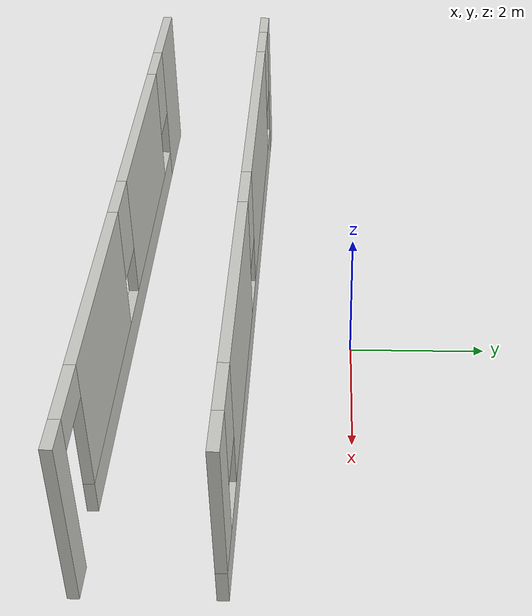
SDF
<?xml version='1.0'?>
<sdf version='1.5'>
  <model name='corridor1'>
    <pose frame=''>-0.895 -2.455 0 0 -0 0</pose>
    <link name='Wall_10'>
      <pose frame=''>0 -0.895 0 0 -0 0</pose>
      <visual name='Wall_10_Visual_0'>
        <pose frame=''>-4.76602 0 1.25 0 -0 0</pose>
        <geometry>
          <box>
            <size>1.46795 0.15 2.5</size>
          </box>
        </geometry>
        <material>
          <script>
            <uri>file://media/materials/scripts/gazebo.material</uri>
            <name>Gazebo/CeilingTiled</name>
          </script>
          <ambient>0 1 0 1</ambient>
        </material>
      </visual>
      <collision name='Wall_10_Collision_0'>
        <geometry>
          <box>
            <size>1.46795 0.15 2.5</size>
          </box>
        </geometry>
        <pose frame=''>-4.76602 0 1.25 0 -0 0</pose>
      </collision>
      <visual name='Wall_10_Visual_1'>
        <pose frame=''>5.26534 0 1.25 0 -0 0</pose>
        <geometry>
          <box>
            <size>0.469324 0.15 2.5</size>
          </box>
        </geometry>
        <material>
          <script>
            <uri>file://media/materials/scripts/gazebo.material</uri>
            <name>Gazebo/CeilingTiled</name>
          </script>
          <ambient>0 1 0 1</ambient>
        </material>
      </visual>
      <collision name='Wall_10_Collision_1'>
        <geometry>
          <box>
            <size>0.469324 0.15 2.5</size>
          </box>
        </geometry>
        <pose frame=''>5.26534 0 1.25 0 -0 0</pose>
      </collision>
      <visual name='Wall_10_Visual_2'>
        <pose frame=''>0.049313 0 0.25 0 -0 0</pose>
        <geometry>
          <box>
            <size>8.16273 0.15 0.5</size>
          </box>
        </geometry>
        <material>
          <script>
            <uri>file://media/materials/scripts/gazebo.material</uri>
            <name>Gazebo/CeilingTiled</name>
          </script>
          <ambient>0 1 0 1</ambient>
        </material>
      </visual>
      <collision name='Wall_10_Collision_2'>
        <geometry>
          <box>
            <size>8.16273 0.15 0.5</size>
          </box>
        </geometry>
        <pose frame=''>0.049313 0 0.25 0 -0 0</pose>
      </collision>
      <visual name='Wall_10_Visual_3'>
        <pose frame=''>-1.54845 0 1.5 0 -0 0</pose>
        <geometry>
          <box>
            <size>3.3672 0.15 2</size>
          </box>
        </geometry>
        <material>
          <script>
            <uri>file://media/materials/scripts/gazebo.material</uri>
            <name>Gazebo/CeilingTiled</name>
          </script>
          <ambient>0 1 0 1</ambient>
        </material>
      </visual>
      <collision name='Wall_10_Collision_3'>
        <geometry>
          <box>
            <size>3.3672 0.15 2</size>
          </box>
        </geometry>
        <pose frame=''>-1.54845 0 1.5 0 -0 0</pose>
      </collision>
      <visual name='Wall_10_Visual_4'>
        <pose frame=''>2.53291 0 1.5 0 -0 0</pose>
        <geometry>
          <box>
            <size>3.19553 0.15 2</size>
          </box>
        </geometry>
        <material>
          <script>
            <uri>file://media/materials/scripts/gazebo.material</uri>
            <name>Gazebo/CeilingTiled</name>
          </script>
          <ambient>0 1 0 1</ambient>
        </material>
      </visual>
      <collision name='Wall_10_Collision_4'>
        <geometry>
          <box>
            <size>3.19553 0.15 2</size>
          </box>
        </geometry>
        <pose frame=''>2.53291 0 1.5 0 -0 0</pose>
      </collision>
      <visual name='Wall_10_Visual_5'>
        <pose frame=''>-3.63205 0 1.9 0 -0 0</pose>
        <geometry>
          <box>
            <size>0.8 0.15 1.2</size>
          </box>
        </geometry>
        <material>
          <script>
            <uri>file://media/materials/scripts/gazebo.material</uri>
            <name>Gazebo/CeilingTiled</name>
          </script>
          <ambient>0 1 0 1</ambient>
        </material>
      </visual>
      <collision name='Wall_10_Collision_5'>
        <geometry>
          <box>
            <size>0.8 0.15 1.2</size>
          </box>
        </geometry>
        <pose frame=''>-3.63205 0 1.9 0 -0 0</pose>
      </collision>
      <visual name='Wall_10_Visual_6'>
        <pose frame=''>0.535148 0 1.9 0 -0 0</pose>
        <geometry>
          <box>
            <size>0.8 0.15 1.2</size>
          </box>
        </geometry>
        <material>
          <script>
            <uri>file://media/materials/scripts/gazebo.material</uri>
            <name>Gazebo/CeilingTiled</name>
          </script>
          <ambient>0 1 0 1</ambient>
        </material>
      </visual>
      <collision name='Wall_10_Collision_6'>
        <geometry>
          <box>
            <size>0.8 0.15 1.2</size>
          </box>
        </geometry>
        <pose frame=''>0.535148 0 1.9 0 -0 0</pose>
      </collision>
      <visual name='Wall_10_Visual_7'>
        <pose frame=''>4.58068 0 2.25 0 -0 0</pose>
        <geometry>
          <box>
            <size>0.9 0.15 0.5</size>
          </box>
        </geometry>
        <material>
          <script>
            <uri>file://media/materials/scripts/gazebo.material</uri>
            <name>Gazebo/CeilingTiled</name>
          </script>
          <ambient>0 1 0 1</ambient>
        </material>
      </visual>
      <collision name='Wall_10_Collision_7'>
        <geometry>
          <box>
            <size>0.9 0.15 0.5</size>
          </box>
        </geometry>
        <pose frame=''>4.58068 0 2.25 0 -0 0</pose>
      </collision>
    </link>
    <link name='Wall_8'>
      <pose frame=''>0 0.895 0 0 -0 0</pose>
      <visual name='Wall_8_Visual_0'>
        <pose frame=''>-5.19947 0 1.25 0 -0 0</pose>
        <geometry>
          <box>
            <size>0.601052 0.15 2.5</size>
          </box>
        </geometry>
        <material>
          <script>
            <uri>file://media/materials/scripts/gazebo.material</uri>
            <name>Gazebo/CeilingTiled</name>
          </script>
          <ambient>0 1 0 1</ambient>
        </material>
      </visual>
      <collision name='Wall_8_Collision_0'>
        <geometry>
          <box>
            <size>0.601052 0.15 2.5</size>
          </box>
        </geometry>
        <pose frame=''>-5.19947 0 1.25 0 -0 0</pose>
      </collision>
      <visual name='Wall_8_Visual_1'>
        <pose frame=''>0.300526 0 0.25 0 -0 0</pose>
        <geometry>
          <box>
            <size>10.3989 0.15 0.5</size>
          </box>
        </geometry>
        <material>
          <script>
            <uri>file://media/materials/scripts/gazebo.material</uri>
            <name>Gazebo/CeilingTiled</name>
          </script>
          <ambient>0 1 0 1</ambient>
        </material>
      </visual>
      <collision name='Wall_8_Collision_1'>
        <geometry>
          <box>
            <size>10.3989 0.15 0.5</size>
          </box>
        </geometry>
        <pose frame=''>0.300526 0 0.25 0 -0 0</pose>
      </collision>
      <visual name='Wall_8_Visual_2'>
        <pose frame=''>-2.12638 0 1.5 0 -0 0</pose>
        <geometry>
          <box>
            <size>3.94513 0.15 2</size>
          </box>
        </geometry>
        <material>
          <script>
            <uri>file://media/materials/scripts/gazebo.material</uri>
            <name>Gazebo/CeilingTiled</name>
          </script>
          <ambient>0 1 0 1</ambient>
        </material>
      </visual>
      <collision name='Wall_8_Collision_2'>
        <geometry>
          <box>
            <size>3.94513 0.15 2</size>
          </box>
        </geometry>
        <pose frame=''>-2.12638 0 1.5 0 -0 0</pose>
      </collision>
      <visual name='Wall_8_Visual_3'>
        <pose frame=''>2.35259 0 1.5 0 -0 0</pose>
        <geometry>
          <box>
            <size>3.41282 0.15 2</size>
          </box>
        </geometry>
        <material>
          <script>
            <uri>file://media/materials/scripts/gazebo.material</uri>
            <name>Gazebo/CeilingTiled</name>
          </script>
          <ambient>0 1 0 1</ambient>
        </material>
      </visual>
      <collision name='Wall_8_Collision_3'>
        <geometry>
          <box>
            <size>3.41282 0.15 2</size>
          </box>
        </geometry>
        <pose frame=''>2.35259 0 1.5 0 -0 0</pose>
      </collision>
      <visual name='Wall_8_Visual_4'>
        <pose frame=''>5.1795 0 1.5 0 -0 0</pose>
        <geometry>
          <box>
            <size>0.640994 0.15 2</size>
          </box>
        </geometry>
        <material>
          <script>
            <uri>file://media/materials/scripts/gazebo.material</uri>
            <name>Gazebo/CeilingTiled</name>
          </script>
          <ambient>0 1 0 1</ambient>
        </material>
      </visual>
      <collision name='Wall_8_Collision_4'>
        <geometry>
          <box>
            <size>0.640994 0.15 2</size>
          </box>
        </geometry>
        <pose frame=''>5.1795 0 1.5 0 -0 0</pose>
      </collision>
      <visual name='Wall_8_Visual_5'>
        <pose frame=''>-4.49895 0 1.9 0 -0 0</pose>
        <geometry>
          <box>
            <size>0.8 0.15 1.2</size>
          </box>
        </geometry>
        <material>
          <script>
            <uri>file://media/materials/scripts/gazebo.material</uri>
            <name>Gazebo/CeilingTiled</name>
          </script>
          <ambient>0 1 0 1</ambient>
        </material>
      </visual>
      <collision name='Wall_8_Collision_5'>
        <geometry>
          <box>
            <size>0.8 0.15 1.2</size>
          </box>
        </geometry>
        <pose frame=''>-4.49895 0 1.9 0 -0 0</pose>
      </collision>
      <visual name='Wall_8_Visual_6'>
        <pose frame=''>0.246182 0 1.9 0 -0 0</pose>
        <geometry>
          <box>
            <size>0.8 0.15 1.2</size>
          </box>
        </geometry>
        <material>
          <script>
            <uri>file://media/materials/scripts/gazebo.material</uri>
            <name>Gazebo/CeilingTiled</name>
          </script>
          <ambient>0 1 0 1</ambient>
        </material>
      </visual>
      <collision name='Wall_8_Collision_6'>
        <geometry>
          <box>
            <size>0.8 0.15 1.2</size>
          </box>
        </geometry>
        <pose frame=''>0.246182 0 1.9 0 -0 0</pose>
      </collision>
      <visual name='Wall_8_Visual_7'>
        <pose frame=''>4.45901 0 1.9 0 -0 0</pose>
        <geometry>
          <box>
            <size>0.8 0.15 1.2</size>
          </box>
        </geometry>
        <material>
          <script>
            <uri>file://media/materials/scripts/gazebo.material</uri>
            <name>Gazebo/CeilingTiled</name>
          </script>
          <ambient>0 1 0 1</ambient>
        </material>
      </visual>
      <collision name='Wall_8_Collision_7'>
        <geometry>
          <box>
            <size>0.8 0.15 1.2</size>
          </box>
        </geometry>
        <pose frame=''>4.45901 0 1.9 0 -0 0</pose>
      </collision>
    </link>
    <static>1</static>
  </model>
</sdf>
